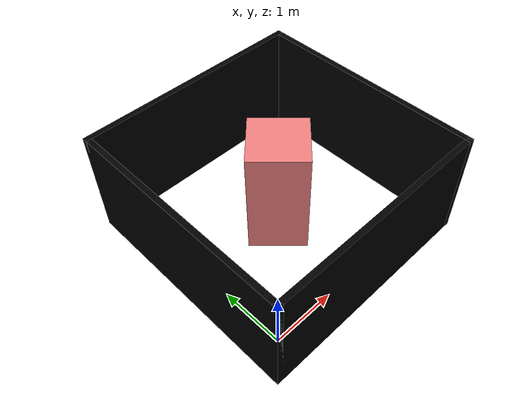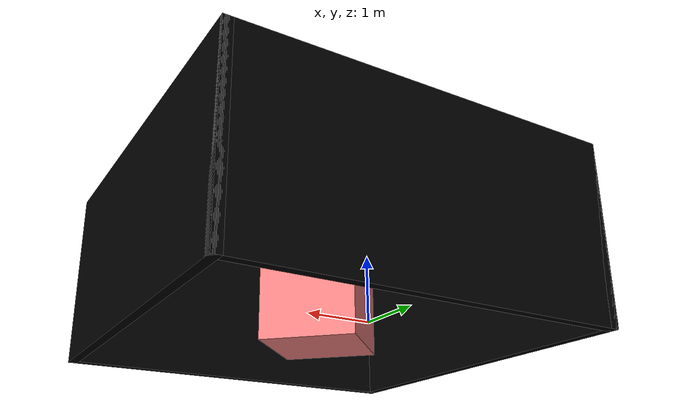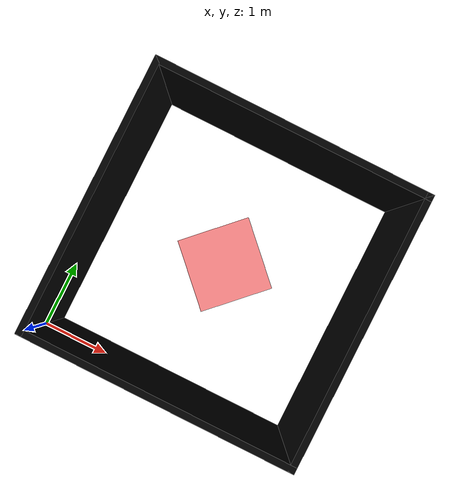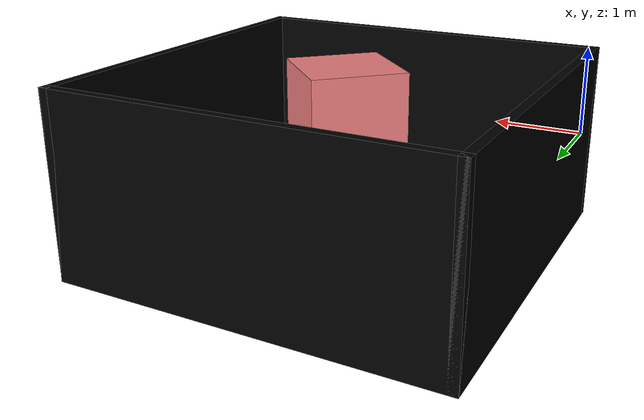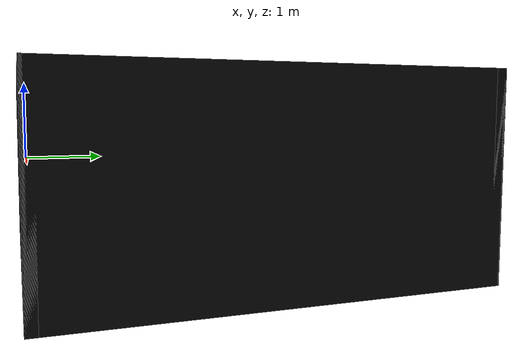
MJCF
<mujoco model="robot">
  <default class="default">
    <geom rgba="0.94 0.5 0.5 1" mass="1.0"/>
  </default>
  <worldbody>
    <!-- border -->
    <geom type="box" pos="2 -0.05 0" size="2.1 0.05 1" rgba="0 0 0 1" />
    <geom type="box" pos="2 4.05 0" size="2.1 0.05 1" rgba="0 0 0 1" />
    <geom type="box" pos="-0.05 2 0" size="0.05 2.1 1" rgba="0 0 0 1" />
    <geom type="box" pos="4.05 2 0" size="0.05 2.1 1" rgba="0 0 0 1" />

    <!-- obstacles 1-->

    <!-- obstacles 2-->
    <geom type="box" pos="2 2 0" size="0.5 0.5 1" euler="0 0 45" class="default" />

    <!-- robot -->
    <body name="robot" pos="0 0 0">
      <geom type="sphere" pos="0 0 0" size="0.01" rgba="0 0 1 1" mass="1" />
      <joint type="slide" name="x" axis="1 0 0" range="0 4" limited="true"/>
      <joint type="slide" name="y" axis="0 1 0" range="0 4" limited="true"/>
    </body>
  </worldbody>
</mujoco>
